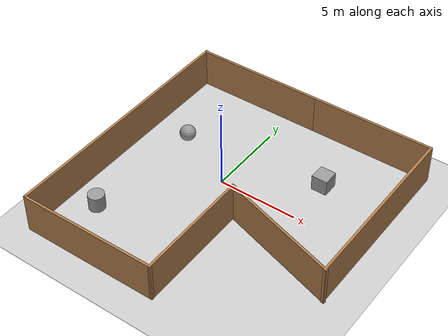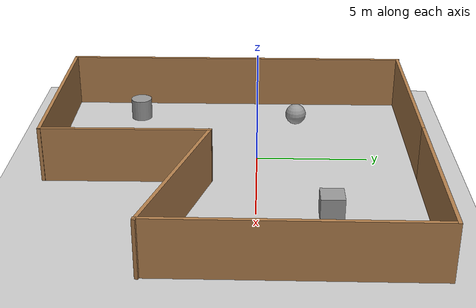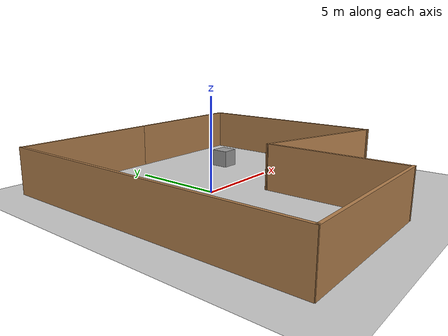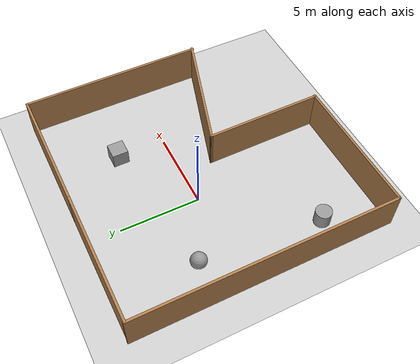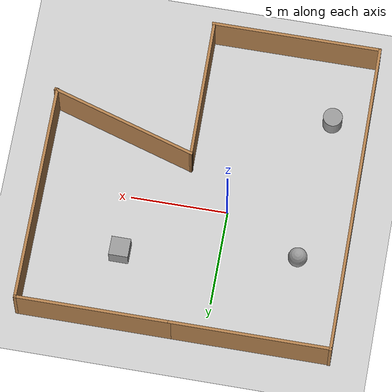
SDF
<sdf version="1.7">
 <world name="default">
  <light name="sun" type="directional">
   <pose>0 0 10 0 -0 0</pose>
   <diffuse>0.8 0.8 0.8 1</diffuse>
   <specular>0.2 0.2 0.2 1</specular>
   <attenuation>
    <range>1000</range>
    <constant>0.9</constant>
    <linear>0.01</linear>
    <quadratic>0.001</quadratic>
   </attenuation>
   <direction>-0.5 0.1 -0.9</direction>
   <spot><inner_angle>0</inner_angle><outer_angle>0</outer_angle><falloff>0</falloff></spot>
  </light>
  <model name="ground_plane">
   <static>1</static>
   <link name="link">
    <collision name="collision">
     <geometry><plane><normal>0 0 1</normal><size>100 100</size></plane></geometry>
     <surface><friction><ode><mu>100</mu><mu2>50</mu2></ode></friction></surface>
    </collision>
    <visual name="visual">
     <cast_shadows>0</cast_shadows>
     <geometry><plane><normal>0 0 1</normal><size>100 100</size></plane></geometry>
     <material>
      <script><uri>file://media/materials/scripts/gazebo.material</uri><name>Gazebo/Grey</name></script>
     </material>
    </visual>
   </link>
  </model>
  <gravity>0 0 -9.8</gravity>
  <magnetic_field>6e-06 2.3e-05 -4.2e-05</magnetic_field>
  <atmosphere type="adiabatic"/>
  <physics type="ode">
   <max_step_size>0.001</max_step_size>
   <real_time_factor>1</real_time_factor>
   <real_time_update_rate>1000</real_time_update_rate>
  </physics>
  <scene><ambient>0.4 0.4 0.4 1</ambient><background>0.7 0.7 0.7 1</background><shadows>1</shadows></scene>
  <audio><device>default</device></audio>
  <spherical_coordinates>
   <surface_model>EARTH_WGS84</surface_model>
   <latitude_deg>0</latitude_deg>
   <longitude_deg>0</longitude_deg>
   <elevation>0</elevation>
   <heading_deg>0</heading_deg>
  </spherical_coordinates>
  <model name="tilted_house">
   <pose>1.64106 -1.08592 0 0 -0 0</pose>
   <link name="Wall_0">
    <collision name="Wall_0_Collision">
     <geometry><box><size>8.25 0.15 2.5</size></box></geometry>
     <pose>0 0 1.25 0 -0 0</pose>
    </collision>
    <visual name="Wall_0_Visual">
     <pose>0 0 1.25 0 -0 0</pose>
     <geometry><box><size>8.25 0.15 2.5</size></box></geometry>
     <material>
      <script><uri>file://media/materials/scripts/gazebo.material</uri><name>Gazebo/Wood</name></script>
      <ambient>1 1 1 1</ambient>
     </material>
     <meta><layer>0</layer></meta>
    </visual>
    <pose>-3.95593 8.1603 0 0 -0 3.14159</pose>
   </link>
   <link name="Wall_1">
    <collision name="Wall_1_Collision">
     <geometry><box><size>16.5007 0.15 2.5</size></box></geometry>
     <pose>0 0 1.25 0 -0 0</pose>
    </collision>
    <visual name="Wall_1_Visual">
     <pose>0 0 1.25 0 -0 0</pose>
     <geometry><box><size>16.5007 0.15 2.5</size></box></geometry>
     <material>
      <script><uri>file://media/materials/scripts/gazebo.material</uri><name>Gazebo/Wood</name></script>
      <ambient>1 1 1 1</ambient>
     </material>
     <meta><layer>0</layer></meta>
    </visual>
    <pose>-8.01947 0.015531 0 0 -0 -1.56871</pose>
   </link>
   <link name="Wall_10">
    <collision name="Wall_10_Collision">
     <geometry><box><size>11.5 0.15 2.5</size></box></geometry>
     <pose>0 0 1.25 0 -0 0</pose>
    </collision>
    <visual name="Wall_10_Visual">
     <pose>0 0 1.25 0 -0 0</pose>
     <geometry><box><size>11.5 0.15 2.5</size></box></geometry>
     <material>
      <script><uri>file://media/materials/scripts/gazebo.material</uri><name>Gazebo/Wood</name></script>
      <ambient>1 1 1 1</ambient>
     </material>
     <meta><layer>0</layer></meta>
    </visual>
    <pose>7.94407 2.4853 0 0 -0 -1.5708</pose>
   </link>
   <link name="Wall_2">
    <collision name="Wall_2_Collision">
     <geometry><box><size>8.8059 0.15 2.5</size></box></geometry>
     <pose>0 0 1.25 0 -0 0</pose>
    </collision>
    <visual name="Wall_2_Visual">
     <pose>0 0 1.25 0 -0 0</pose>
     <geometry><box><size>8.8059 0.15 2.5</size></box></geometry>
     <material>
      <script><uri>file://media/materials/scripts/gazebo.material</uri><name>Gazebo/Wood</name></script>
      <ambient>1 1 1 1</ambient>
     </material>
     <meta><layer>0</layer></meta>
    </visual>
    <pose>-3.64388 -8.19042 0 0 -0 0</pose>
   </link>
   <link name="Wall_3">
    <collision name="Wall_3_Collision">
     <geometry><box><size>7.43164 0.15 2.5</size></box></geometry>
     <pose>0 0 1.25 0 -0 0</pose>
    </collision>
    <visual name="Wall_3_Visual">
     <pose>0 0 1.25 0 -0 0</pose>
     <geometry><box><size>7.43164 0.15 2.5</size></box></geometry>
     <material>
      <script><uri>file://media/materials/scripts/gazebo.material</uri><name>Gazebo/Wood</name></script>
      <ambient>1 1 1 1</ambient>
     </material>
     <meta><layer>0</layer></meta>
    </visual>
    <pose>0.622889 -4.54972 0 0 -0 1.5792</pose>
   </link>
   <link name="Wall_5">
    <collision name="Wall_5_Collision">
     <geometry><box><size>7.91772 0.15 2.5</size></box></geometry>
     <pose>0 0 1.25 0 -0 0</pose>
    </collision>
    <visual name="Wall_5_Visual">
     <pose>0 0 1.25 0 -0 0</pose>
     <geometry><box><size>7.91772 0.15 2.5</size></box></geometry>
     <material>
      <script><uri>file://media/materials/scripts/gazebo.material</uri><name>Gazebo/Wood</name></script>
      <ambient>1 1 1 1</ambient>
     </material>
     <meta><layer>0</layer></meta>
    </visual>
    <pose>4.30513 -2.04887 0 0 -0 2.84373</pose>
   </link>
   <link name="Wall_9">
    <collision name="Wall_9_Collision">
     <geometry><box><size>8 0.15 2.5</size></box></geometry>
     <pose>0 0 1.25 0 -0 0</pose>
    </collision>
    <visual name="Wall_9_Visual">
     <pose>0 0 1.25 0 -0 0</pose>
     <geometry><box><size>8 0.15 2.5</size></box></geometry>
     <material>
      <script><uri>file://media/materials/scripts/gazebo.material</uri><name>Gazebo/Wood</name></script>
      <ambient>1 1 1 1</ambient>
     </material>
     <meta><layer>0</layer></meta>
    </visual>
    <pose>4.01907 8.1603 0 0 -0 0</pose>
   </link>
   <static>1</static>
  </model>
  <model name="unit_sphere">
   <pose>-3.95027 1.90031 0.5 0 -0 0</pose>
   <link name="link">
    <inertial>
     <mass>1</mass>
     <inertia><ixx>0.1</ixx><ixy>0</ixy><ixz>0</ixz><iyy>0.1</iyy><iyz>0</iyz><izz>0.1</izz></inertia>
    </inertial>
    <collision name="collision"><geometry><sphere><radius>0.5</radius></sphere></geometry></collision>
    <visual name="visual">
     <geometry><sphere><radius>0.5</radius></sphere></geometry>
     <material>
      <script><name>Gazebo/Grey</name><uri>file://media/materials/scripts/gazebo.material</uri></script>
     </material>
    </visual>
   </link>
  </model>
  <model name="unit_box">
   <pose>5.01911 3.06556 0.499995 -1e-05 -0 0</pose>
   <link name="link">
    <inertial>
     <mass>1</mass>
     <inertia>
      <ixx>0.166667</ixx>
      <ixy>0</ixy>
      <ixz>0</ixz>
      <iyy>0.166667</iyy>
      <iyz>0</iyz>
      <izz>0.166667</izz>
     </inertia>
    </inertial>
    <collision name="collision"><geometry><box><size>1 1 1</size></box></geometry></collision>
    <visual name="visual">
     <geometry><box><size>1 1 1</size></box></geometry>
     <material>
      <script><name>Gazebo/Grey</name><uri>file://media/materials/scripts/gazebo.material</uri></script>
     </material>
    </visual>
   </link>
  </model>
  <model name="unit_cylinder">
   <pose>-4.51858 -5.79401 0.499997 3e-06 4e-06 -0</pose>
   <link name="link">
    <inertial>
     <mass>1</mass>
     <inertia><ixx>0.145833</ixx><ixy>0</ixy><ixz>0</ixz><iyy>0.145833</iyy><iyz>0</iyz><izz>0.125</izz></inertia>
    </inertial>
    <collision name="collision">
     <geometry><cylinder><radius>0.5</radius><length>1</length></cylinder></geometry>
    </collision>
    <visual name="visual">
     <geometry><cylinder><radius>0.5</radius><length>1</length></cylinder></geometry>
     <material>
      <script><name>Gazebo/Grey</name><uri>file://media/materials/scripts/gazebo.material</uri></script>
     </material>
    </visual>
   </link>
  </model>
 </world>
</sdf>
